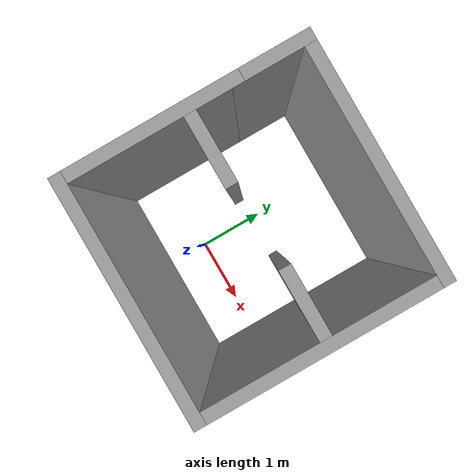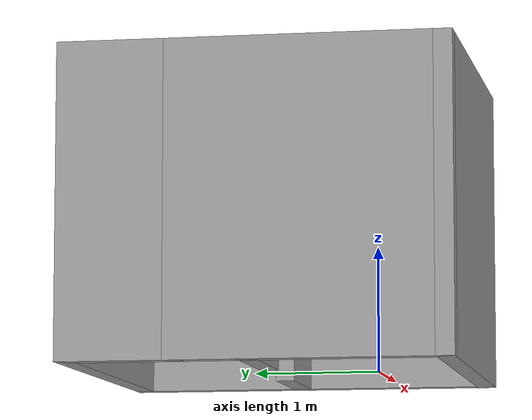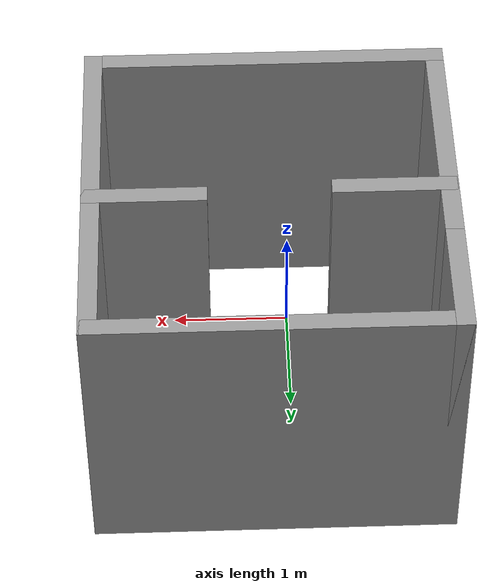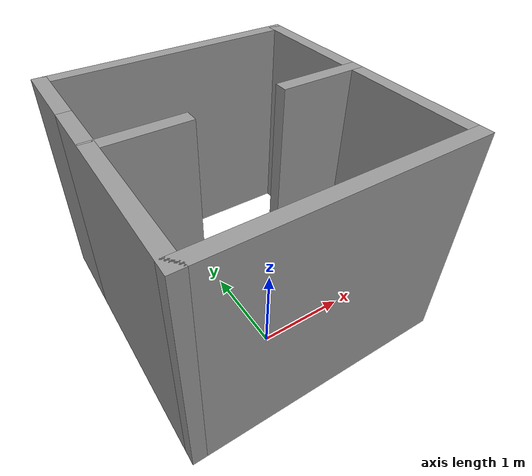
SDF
<?xml version='1.0'?>
<sdf version='1.7'>
  <model name='labirent_ortam'>
    <pose>0.175 0.785 0 0 -0 0</pose>
    <link name='Wall_0'>
      <collision name='Wall_0_Collision'>
        <geometry>
          <box>
            <size>3 0.15 2.5</size>
          </box>
        </geometry>
        <pose>0 0 1.25 0 -0 0</pose>
      </collision>
      <visual name='Wall_0_Visual'>
        <pose>0 0 1.25 0 -0 0</pose>
        <geometry>
          <box>
            <size>3 0.15 2.5</size>
          </box>
        </geometry>
        <material>
          <script>
            <uri>file://media/materials/scripts/gazebo.material</uri>
            <name>Gazebo/Grey</name>
          </script>
          <ambient>1 1 1 1</ambient>
        </material>
        <meta>
          <layer>0</layer>
        </meta>
      </visual>
      <pose>-0 -1.475 0 0 -0 3.14159</pose>
    </link>
    <link name='Wall_1'>
      <collision name='Wall_1_Collision'>
        <geometry>
          <box>
            <size>2.25 0.15 2.5</size>
          </box>
        </geometry>
        <pose>0 0 1.25 0 -0 0</pose>
      </collision>
      <visual name='Wall_1_Visual'>
        <pose>0 0 1.25 0 -0 0</pose>
        <geometry>
          <box>
            <size>2.25 0.15 2.5</size>
          </box>
        </geometry>
        <material>
          <script>
            <uri>file://media/materials/scripts/gazebo.material</uri>
            <name>Gazebo/Grey</name>
          </script>
          <ambient>1 1 1 1</ambient>
        </material>
        <meta>
          <layer>0</layer>
        </meta>
      </visual>
      <pose>-1.425 -0.425 0 0 -0 1.5708</pose>
    </link>
    <link name='Wall_2'>
      <collision name='Wall_2_Collision'>
        <geometry>
          <box>
            <size>1 0.15 2.5</size>
          </box>
        </geometry>
        <pose>0 0 1.25 0 -0 0</pose>
      </collision>
      <visual name='Wall_2_Visual'>
        <pose>0 0 1.25 0 -0 0</pose>
        <geometry>
          <box>
            <size>1 0.15 2.5</size>
          </box>
        </geometry>
        <material>
          <script>
            <uri>file://media/materials/scripts/gazebo.material</uri>
            <name>Gazebo/Grey</name>
          </script>
          <ambient>1 1 1 1</ambient>
        </material>
        <meta>
          <layer>0</layer>
        </meta>
      </visual>
      <pose>-1.425 1.05 0 0 -0 1.5708</pose>
    </link>
    <link name='Wall_3'>
      <collision name='Wall_3_Collision'>
        <geometry>
          <box>
            <size>3 0.15 2.5</size>
          </box>
        </geometry>
        <pose>0 0 1.25 0 -0 0</pose>
      </collision>
      <visual name='Wall_3_Visual'>
        <pose>0 0 1.25 0 -0 0</pose>
        <geometry>
          <box>
            <size>3 0.15 2.5</size>
          </box>
        </geometry>
        <material>
          <script>
            <uri>file://media/materials/scripts/gazebo.material</uri>
            <name>Gazebo/Grey</name>
          </script>
          <ambient>1 1 1 1</ambient>
        </material>
        <meta>
          <layer>0</layer>
        </meta>
      </visual>
      <pose>-0 1.475 0 0 -0 0</pose>
    </link>
    <link name='Wall_4'>
      <collision name='Wall_4_Collision'>
        <geometry>
          <box>
            <size>3.1 0.15 2.5</size>
          </box>
        </geometry>
        <pose>0 0 1.25 0 -0 0</pose>
      </collision>
      <visual name='Wall_4_Visual'>
        <pose>0 0 1.25 0 -0 0</pose>
        <geometry>
          <box>
            <size>3.1 0.15 2.5</size>
          </box>
        </geometry>
        <material>
          <script>
            <uri>file://media/materials/scripts/gazebo.material</uri>
            <name>Gazebo/Grey</name>
          </script>
          <ambient>1 1 1 1</ambient>
        </material>
        <meta>
          <layer>0</layer>
        </meta>
      </visual>
      <pose>1.425 -0 0 0 -0 -1.5708</pose>
    </link>
    <link name='Wall_6'>
      <collision name='Wall_6_Collision'>
        <geometry>
          <box>
            <size>1 0.15 2.5</size>
          </box>
        </geometry>
        <pose>0 0 1.25 0 -0 0</pose>
      </collision>
      <visual name='Wall_6_Visual'>
        <pose>0 0 1.25 0 -0 0</pose>
        <geometry>
          <box>
            <size>1 0.15 2.5</size>
          </box>
        </geometry>
        <material>
          <script>
            <uri>file://media/materials/scripts/gazebo.material</uri>
            <name>Gazebo/Grey</name>
          </script>
          <ambient>1 1 1 1</ambient>
        </material>
        <meta>
          <layer>0</layer>
        </meta>
      </visual>
      <pose>-0.990923 0.045899 0 0 -0 0</pose>
    </link>
    <link name='Wall_8'>
      <collision name='Wall_8_Collision'>
        <geometry>
          <box>
            <size>1 0.15 2.5</size>
          </box>
        </geometry>
        <pose>0 0 1.25 0 -0 0</pose>
      </collision>
      <visual name='Wall_8_Visual'>
        <pose>0 0 1.25 0 -0 0</pose>
        <geometry>
          <box>
            <size>1 0.15 2.5</size>
          </box>
        </geometry>
        <material>
          <script>
            <uri>file://media/materials/scripts/gazebo.material</uri>
            <name>Gazebo/Grey</name>
          </script>
          <ambient>1 1 1 1</ambient>
        </material>
        <meta>
          <layer>0</layer>
        </meta>
      </visual>
      <pose>0.999614 0.097172 0 0 -0 3.14159</pose>
    </link>
    <static>1</static>
  </model>
</sdf>
